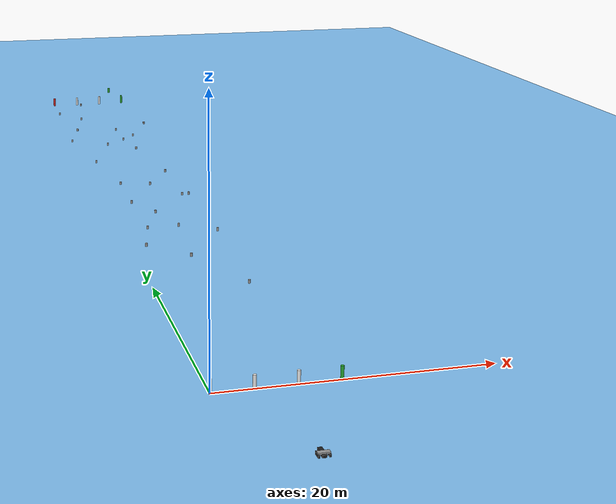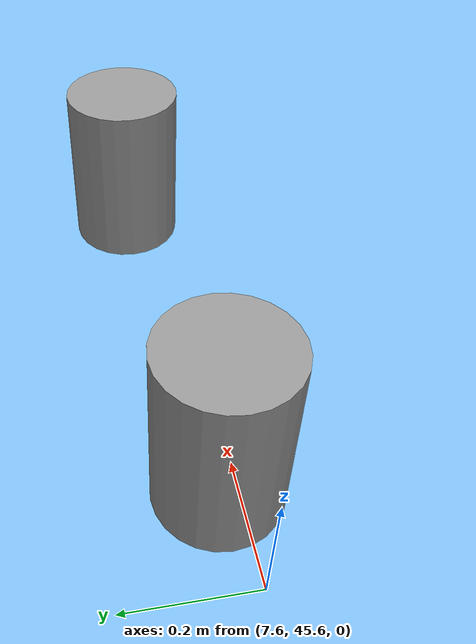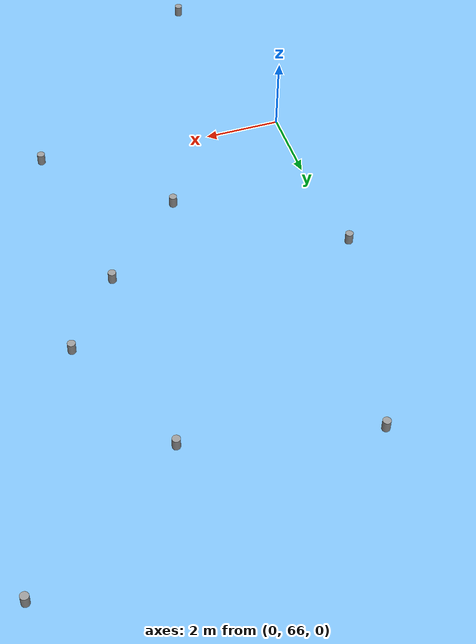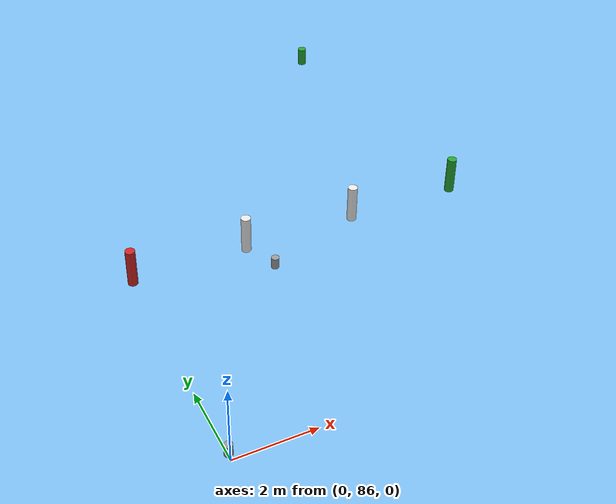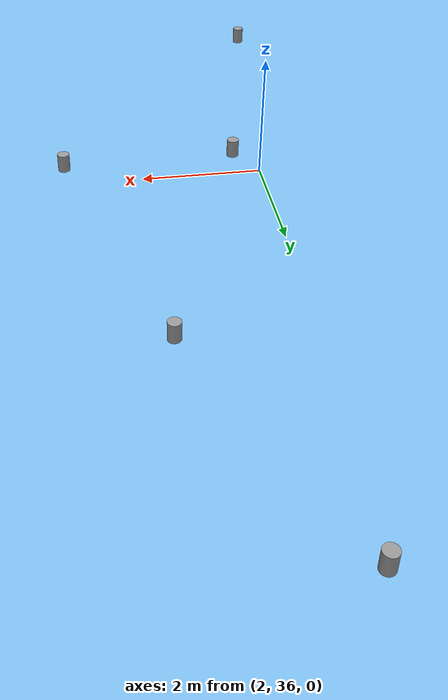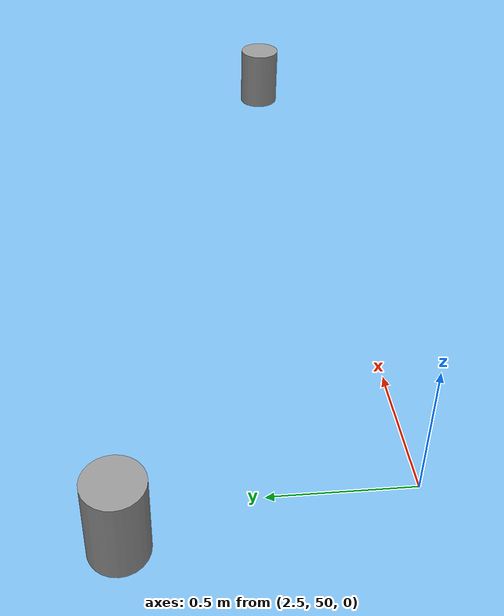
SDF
<sdf version="1.4">
 <world name="world2-case0">
  <light name="sun" type="directional">
   <pose>0 0 10 0 -0 0</pose>
   <diffuse>0.8 0.8 0.8 1</diffuse>
   <specular>0.2 0.2 0.2 1</specular>
   <attenuation>
    <range>1000</range>
    <constant>0.9</constant>
    <linear>0.01</linear>
    <quadratic>0.001</quadratic>
   </attenuation>
   <direction>-0.5 0.1 -0.9</direction>
  </light>
  <model name="ground_plane">
   <static>1</static>
   <pose>4.5 46 0 0 -0 0</pose>
   <link name="link">
    <collision name="collision">
     <geometry><plane><normal>0 0 1</normal><size>20 150</size></plane></geometry>
     <surface><friction><ode><mu>100</mu><mu2>50</mu2></ode></friction></surface>
    </collision>
    <visual name="visual">
     <cast_shadows>0</cast_shadows>
     <geometry><plane><normal>0 0 1</normal><size>20 150</size></plane></geometry>
     <material>
      <script><uri>file://media/materials/scripts/gazebo.material</uri><name>Gazebo/SkyBlue</name></script>
     </material>
    </visual>
    <velocity_decay><linear>0</linear><angular>0</angular></velocity_decay>
   </link>
  </model>
  <physics type="ode">
   <max_step_size>0.001</max_step_size>
   <real_time_factor>1</real_time_factor>
   <real_time_update_rate>1000</real_time_update_rate>
   <gravity>0 0 -9.8</gravity>
  </physics>
  <scene>
   <ambient>0.4 0.4 0.4 1</ambient>
   <background>0.7 0.7 0.7 1</background>
   <shadows>1</shadows>
   <grid>0</grid>
  </scene>
  <spherical_coordinates>
   <surface_model>EARTH_WGS84</surface_model>
   <latitude_deg>0</latitude_deg>
   <longitude_deg>0</longitude_deg>
   <elevation>0</elevation>
   <heading_deg>0</heading_deg>
  </spherical_coordinates>
  <model name="goal_location">
   <static>1</static>
   <pose>8.5 100 0 0 -0 0</pose>
   <link name="link">
    <visual name="visual">
     <geometry><cylinder><radius>0.125</radius><length>1</length></cylinder></geometry>
     <material>
      <script><uri>file://media/materials/scripts/gazebo.material</uri><name>Gazebo/GreenGlow</name></script>
     </material>
    </visual>
    <velocity_decay><linear>0</linear><angular>0</angular></velocity_decay>
   </link>
  </model>
  <model name="boundary_1">
   <static>1</static>
   <pose>0 0 0.5 0 -0 0</pose>
   <link name="link">
    <collision name="collision">
     <geometry><cylinder><radius>0.125</radius><length>1</length></cylinder></geometry>
    </collision>
    <visual name="visual">
     <geometry><cylinder><radius>0.125</radius><length>1</length></cylinder></geometry>
     <material>
      <script><uri>file://media/materials/scripts/gazebo.material</uri><name>Gazebo/Red</name></script>
     </material>
    </visual>
    <velocity_decay><linear>0</linear><angular>0</angular></velocity_decay>
   </link>
  </model>
  <model name="boundary_2">
   <static>1</static>
   <pose>3 0 0.5 0 -0 0</pose>
   <link name="link">
    <collision name="collision">
     <geometry><cylinder><radius>0.125</radius><length>1</length></cylinder></geometry>
    </collision>
    <visual name="visual">
     <geometry><cylinder><radius>0.125</radius><length>1</length></cylinder></geometry>
     <material>
      <script><uri>file://media/materials/scripts/gazebo.material</uri><name>Gazebo/White</name></script>
     </material>
    </visual>
    <velocity_decay><linear>0</linear><angular>0</angular></velocity_decay>
   </link>
  </model>
  <model name="boundary_3">
   <static>1</static>
   <pose>6 0 0.5 0 -0 0</pose>
   <link name="link">
    <collision name="collision">
     <geometry><cylinder><radius>0.125</radius><length>1</length></cylinder></geometry>
    </collision>
    <visual name="visual">
     <geometry><cylinder><radius>0.125</radius><length>1</length></cylinder></geometry>
     <material>
      <script><uri>file://media/materials/scripts/gazebo.material</uri><name>Gazebo/White</name></script>
     </material>
    </visual>
    <velocity_decay><linear>0</linear><angular>0</angular></velocity_decay>
   </link>
  </model>
  <model name="start_boundary">
   <static>1</static>
   <pose>9 0 0.5 0 -0 0</pose>
   <link name="link">
    <collision name="collision">
     <geometry><cylinder><radius>0.125</radius><length>1</length></cylinder></geometry>
    </collision>
    <visual name="visual">
     <geometry><cylinder><radius>0.125</radius><length>1</length></cylinder></geometry>
     <material>
      <script><uri>file://media/materials/scripts/gazebo.material</uri><name>Gazebo/Green</name></script>
     </material>
    </visual>
    <velocity_decay><linear>0</linear><angular>0</angular></velocity_decay>
   </link>
  </model>
  <model name="boundary_5">
   <static>1</static>
   <pose>0 92 0.5 0 -0 0</pose>
   <link name="link">
    <collision name="collision">
     <geometry><cylinder><radius>0.125</radius><length>1</length></cylinder></geometry>
    </collision>
    <visual name="visual">
     <geometry><cylinder><radius>0.125</radius><length>1</length></cylinder></geometry>
     <material>
      <script><uri>file://media/materials/scripts/gazebo.material</uri><name>Gazebo/Red</name></script>
     </material>
    </visual>
    <velocity_decay><linear>0</linear><angular>0</angular></velocity_decay>
   </link>
  </model>
  <model name="boundary_6">
   <static>1</static>
   <pose>3 92 0.5 0 -0 0</pose>
   <link name="link">
    <collision name="collision">
     <geometry><cylinder><radius>0.125</radius><length>1</length></cylinder></geometry>
    </collision>
    <visual name="visual">
     <geometry><cylinder><radius>0.125</radius><length>1</length></cylinder></geometry>
     <material>
      <script><uri>file://media/materials/scripts/gazebo.material</uri><name>Gazebo/White</name></script>
     </material>
    </visual>
    <velocity_decay><linear>0</linear><angular>0</angular></velocity_decay>
   </link>
  </model>
  <model name="boundary_7">
   <static>1</static>
   <pose>6 92 0.5 0 -0 0</pose>
   <link name="link">
    <collision name="collision">
     <geometry><cylinder><radius>0.125</radius><length>1</length></cylinder></geometry>
    </collision>
    <visual name="visual">
     <geometry><cylinder><radius>0.125</radius><length>1</length></cylinder></geometry>
     <material>
      <script><uri>file://media/materials/scripts/gazebo.material</uri><name>Gazebo/White</name></script>
     </material>
    </visual>
    <velocity_decay><linear>0</linear><angular>0</angular></velocity_decay>
   </link>
  </model>
  <model name="goal_boundary">
   <static>1</static>
   <pose>9 92 0.5 0 -0 0</pose>
   <link name="link">
    <collision name="collision">
     <geometry><cylinder><radius>0.125</radius><length>1</length></cylinder></geometry>
    </collision>
    <visual name="visual">
     <geometry><cylinder><radius>0.125</radius><length>1</length></cylinder></geometry>
     <material>
      <script><uri>file://media/materials/scripts/gazebo.material</uri><name>Gazebo/Green</name></script>
     </material>
    </visual>
    <velocity_decay><linear>0</linear><angular>0</angular></velocity_decay>
   </link>
  </model>
  <model name="ob01">
   <static>1</static>
   <pose>2.36 35.38 0.15 0 -0 0</pose>
   <link name="link">
    <collision name="collision">
     <geometry><cylinder><radius>0.1</radius><length>0.3</length></cylinder></geometry>
    </collision>
    <visual name="visual">
     <geometry><cylinder><radius>0.1</radius><length>0.3</length></cylinder></geometry>
     <material>
      <script><uri>file://media/materials/scripts/gazebo.material</uri><name>Gazebo/Grey</name></script>
     </material>
    </visual>
    <velocity_decay><linear>0</linear><angular>0</angular></velocity_decay>
   </link>
  </model>
  <model name="ob02">
   <static>1</static>
   <pose>9.669 78.2986 0.15 0 -0 0</pose>
   <link name="link">
    <collision name="collision">
     <geometry><cylinder><radius>0.1</radius><length>0.3</length></cylinder></geometry>
    </collision>
    <visual name="visual">
     <geometry><cylinder><radius>0.1</radius><length>0.3</length></cylinder></geometry>
     <material>
      <script><uri>file://media/materials/scripts/gazebo.material</uri><name>Gazebo/Grey</name></script>
     </material>
    </visual>
    <velocity_decay><linear>0</linear><angular>0</angular></velocity_decay>
   </link>
  </model>
  <model name="ob03">
   <static>1</static>
   <pose>7.26472 72.23 0.15 0 -0 0</pose>
   <link name="link">
    <collision name="collision">
     <geometry><cylinder><radius>0.1</radius><length>0.3</length></cylinder></geometry>
    </collision>
    <visual name="visual">
     <geometry><cylinder><radius>0.1</radius><length>0.3</length></cylinder></geometry>
     <material>
      <script><uri>file://media/materials/scripts/gazebo.material</uri><name>Gazebo/Grey</name></script>
     </material>
    </visual>
    <velocity_decay><linear>0</linear><angular>0</angular></velocity_decay>
   </link>
  </model>
  <model name="ob04">
   <static>1</static>
   <pose>7.76 45.63 0.15 0 -0 0</pose>
   <link name="link">
    <collision name="collision">
     <geometry><cylinder><radius>0.1</radius><length>0.3</length></cylinder></geometry>
    </collision>
    <visual name="visual">
     <geometry><cylinder><radius>0.1</radius><length>0.3</length></cylinder></geometry>
     <material>
      <script><uri>file://media/materials/scripts/gazebo.material</uri><name>Gazebo/Grey</name></script>
     </material>
    </visual>
    <velocity_decay><linear>0</linear><angular>0</angular></velocity_decay>
   </link>
  </model>
  <model name="ob05">
   <static>1</static>
   <pose>5.30721 50.18 0.15 0 -0 0</pose>
   <link name="link">
    <collision name="collision">
     <geometry><cylinder><radius>0.1</radius><length>0.3</length></cylinder></geometry>
    </collision>
    <visual name="visual">
     <geometry><cylinder><radius>0.1</radius><length>0.3</length></cylinder></geometry>
     <material>
      <script><uri>file://media/materials/scripts/gazebo.material</uri><name>Gazebo/Grey</name></script>
     </material>
    </visual>
    <velocity_decay><linear>0</linear><angular>0</angular></velocity_decay>
   </link>
  </model>
  <model name="ob06">
   <static>1</static>
   <pose>2.3524 50.96 0.15 0 -0 0</pose>
   <link name="link">
    <collision name="collision">
     <geometry><cylinder><radius>0.1</radius><length>0.3</length></cylinder></geometry>
    </collision>
    <visual name="visual">
     <geometry><cylinder><radius>0.1</radius><length>0.3</length></cylinder></geometry>
     <material>
      <script><uri>file://media/materials/scripts/gazebo.material</uri><name>Gazebo/Grey</name></script>
     </material>
    </visual>
    <velocity_decay><linear>0</linear><angular>0</angular></velocity_decay>
   </link>
  </model>
  <model name="ob07">
   <static>1</static>
   <pose>8.40992 45.676 0.15 0 -0 0</pose>
   <link name="link">
    <collision name="collision">
     <geometry><cylinder><radius>0.1</radius><length>0.3</length></cylinder></geometry>
    </collision>
    <visual name="visual">
     <geometry><cylinder><radius>0.1</radius><length>0.3</length></cylinder></geometry>
     <material>
      <script><uri>file://media/materials/scripts/gazebo.material</uri><name>Gazebo/Grey</name></script>
     </material>
    </visual>
    <velocity_decay><linear>0</linear><angular>0</angular></velocity_decay>
   </link>
  </model>
  <model name="ob08">
   <static>1</static>
   <pose>5.7 75.55 0.15 0 -0 0</pose>
   <link name="link">
    <collision name="collision">
     <geometry><cylinder><radius>0.1</radius><length>0.3</length></cylinder></geometry>
    </collision>
    <visual name="visual">
     <geometry><cylinder><radius>0.1</radius><length>0.3</length></cylinder></geometry>
     <material>
      <script><uri>file://media/materials/scripts/gazebo.material</uri><name>Gazebo/Grey</name></script>
     </material>
    </visual>
    <velocity_decay><linear>0</linear><angular>0</angular></velocity_decay>
   </link>
  </model>
  <model name="ob09">
   <static>1</static>
   <pose>0.028 86.17 0.15 0 -0 0</pose>
   <link name="link">
    <collision name="collision">
     <geometry><cylinder><radius>0.1</radius><length>0.3</length></cylinder></geometry>
    </collision>
    <visual name="visual">
     <geometry><cylinder><radius>0.1</radius><length>0.3</length></cylinder></geometry>
     <material>
      <script><uri>file://media/materials/scripts/gazebo.material</uri><name>Gazebo/Grey</name></script>
     </material>
    </visual>
    <velocity_decay><linear>0</linear><angular>0</angular></velocity_decay>
   </link>
  </model>
  <model name="ob10">
   <static>1</static>
   <pose>1.17 60.4532 0.15 0 -0 0</pose>
   <link name="link">
    <collision name="collision">
     <geometry><cylinder><radius>0.1</radius><length>0.3</length></cylinder></geometry>
    </collision>
    <visual name="visual">
     <geometry><cylinder><radius>0.1</radius><length>0.3</length></cylinder></geometry>
     <material>
      <script><uri>file://media/materials/scripts/gazebo.material</uri><name>Gazebo/Grey</name></script>
     </material>
    </visual>
    <velocity_decay><linear>0</linear><angular>0</angular></velocity_decay>
   </link>
  </model>
  <model name="ob11">
   <static>1</static>
   <pose>3.99 40.14 0.15 0 -0 0</pose>
   <link name="link">
    <collision name="collision">
     <geometry><cylinder><radius>0.1</radius><length>0.3</length></cylinder></geometry>
    </collision>
    <visual name="visual">
     <geometry><cylinder><radius>0.1</radius><length>0.3</length></cylinder></geometry>
     <material>
      <script><uri>file://media/materials/scripts/gazebo.material</uri><name>Gazebo/Grey</name></script>
     </material>
    </visual>
    <velocity_decay><linear>0</linear><angular>0</angular></velocity_decay>
   </link>
  </model>
  <model name="ob12">
   <static>1</static>
   <pose>3.37 91.08 0.15 0 -0 0</pose>
   <link name="link">
    <collision name="collision">
     <geometry><cylinder><radius>0.1</radius><length>0.3</length></cylinder></geometry>
    </collision>
    <visual name="visual">
     <geometry><cylinder><radius>0.1</radius><length>0.3</length></cylinder></geometry>
     <material>
      <script><uri>file://media/materials/scripts/gazebo.material</uri><name>Gazebo/Grey</name></script>
     </material>
    </visual>
    <velocity_decay><linear>0</linear><angular>0</angular></velocity_decay>
   </link>
  </model>
  <model name="ob13">
   <static>1</static>
   <pose>5.8 70.35 0.15 0 -0 0</pose>
   <link name="link">
    <collision name="collision">
     <geometry><cylinder><radius>0.1</radius><length>0.3</length></cylinder></geometry>
    </collision>
    <visual name="visual">
     <geometry><cylinder><radius>0.1</radius><length>0.3</length></cylinder></geometry>
     <material>
      <script><uri>file://media/materials/scripts/gazebo.material</uri><name>Gazebo/Grey</name></script>
     </material>
    </visual>
    <velocity_decay><linear>0</linear><angular>0</angular></velocity_decay>
   </link>
  </model>
  <model name="ob14">
   <static>1</static>
   <pose>2.31399 43.9417 0.15 0 -0 0</pose>
   <link name="link">
    <collision name="collision">
     <geometry><cylinder><radius>0.1</radius><length>0.3</length></cylinder></geometry>
    </collision>
    <visual name="visual">
     <geometry><cylinder><radius>0.1</radius><length>0.3</length></cylinder></geometry>
     <material>
      <script><uri>file://media/materials/scripts/gazebo.material</uri><name>Gazebo/Grey</name></script>
     </material>
    </visual>
    <velocity_decay><linear>0</linear><angular>0</angular></velocity_decay>
   </link>
  </model>
  <model name="ob15">
   <static>1</static>
   <pose>4.62 26.88 0.15 0 -0 0</pose>
   <link name="link">
    <collision name="collision">
     <geometry><cylinder><radius>0.1</radius><length>0.3</length></cylinder></geometry>
    </collision>
    <visual name="visual">
     <geometry><cylinder><radius>0.1</radius><length>0.3</length></cylinder></geometry>
     <material>
      <script><uri>file://media/materials/scripts/gazebo.material</uri><name>Gazebo/Grey</name></script>
     </material>
    </visual>
    <velocity_decay><linear>0</linear><angular>0</angular></velocity_decay>
   </link>
  </model>
  <model name="ob16">
   <static>1</static>
   <pose>2.37 82.6 0.15 0 -0 0</pose>
   <link name="link">
    <collision name="collision">
     <geometry><cylinder><radius>0.1</radius><length>0.3</length></cylinder></geometry>
    </collision>
    <visual name="visual">
     <geometry><cylinder><radius>0.1</radius><length>0.3</length></cylinder></geometry>
     <material>
      <script><uri>file://media/materials/scripts/gazebo.material</uri><name>Gazebo/Grey</name></script>
     </material>
    </visual>
    <velocity_decay><linear>0</linear><angular>0</angular></velocity_decay>
   </link>
  </model>
  <model name="ob17">
   <static>1</static>
   <pose>8.49548 33.36 0.15 0 -0 0</pose>
   <link name="link">
    <collision name="collision">
     <geometry><cylinder><radius>0.1</radius><length>0.3</length></cylinder></geometry>
    </collision>
    <visual name="visual">
     <geometry><cylinder><radius>0.1</radius><length>0.3</length></cylinder></geometry>
     <material>
      <script><uri>file://media/materials/scripts/gazebo.material</uri><name>Gazebo/Grey</name></script>
     </material>
    </visual>
    <velocity_decay><linear>0</linear><angular>0</angular></velocity_decay>
   </link>
  </model>
  <model name="ob18">
   <static>1</static>
   <pose>5.29 35.5 0.15 0 -0 0</pose>
   <link name="link">
    <collision name="collision">
     <geometry><cylinder><radius>0.1</radius><length>0.3</length></cylinder></geometry>
    </collision>
    <visual name="visual">
     <geometry><cylinder><radius>0.1</radius><length>0.3</length></cylinder></geometry>
     <material>
      <script><uri>file://media/materials/scripts/gazebo.material</uri><name>Gazebo/Grey</name></script>
     </material>
    </visual>
    <velocity_decay><linear>0</linear><angular>0</angular></velocity_decay>
   </link>
  </model>
  <model name="ob19">
   <static>1</static>
   <pose>1.35 30.41 0.15 0 -0 0</pose>
   <link name="link">
    <collision name="collision">
     <geometry><cylinder><radius>0.1</radius><length>0.3</length></cylinder></geometry>
    </collision>
    <visual name="visual">
     <geometry><cylinder><radius>0.1</radius><length>0.3</length></cylinder></geometry>
     <material>
      <script><uri>file://media/materials/scripts/gazebo.material</uri><name>Gazebo/Grey</name></script>
     </material>
    </visual>
    <velocity_decay><linear>0</linear><angular>0</angular></velocity_decay>
   </link>
  </model>
  <model name="ob20">
   <static>1</static>
   <pose>7.80967 54.871 0.15 0 -0 0</pose>
   <link name="link">
    <collision name="collision">
     <geometry><cylinder><radius>0.1</radius><length>0.3</length></cylinder></geometry>
    </collision>
    <visual name="visual">
     <geometry><cylinder><radius>0.1</radius><length>0.3</length></cylinder></geometry>
     <material>
      <script><uri>file://media/materials/scripts/gazebo.material</uri><name>Gazebo/Grey</name></script>
     </material>
    </visual>
    <velocity_decay><linear>0</linear><angular>0</angular></velocity_decay>
   </link>
  </model>
  <model name="ob21">
   <static>1</static>
   <pose>7.75 19.29 0.15 0 -0 0</pose>
   <link name="link">
    <collision name="collision">
     <geometry><cylinder><radius>0.1</radius><length>0.3</length></cylinder></geometry>
    </collision>
    <visual name="visual">
     <geometry><cylinder><radius>0.1</radius><length>0.3</length></cylinder></geometry>
     <material>
      <script><uri>file://media/materials/scripts/gazebo.material</uri><name>Gazebo/Grey</name></script>
     </material>
    </visual>
    <velocity_decay><linear>0</linear><angular>0</angular></velocity_decay>
   </link>
  </model>
  <model name="ob22">
   <static>1</static>
   <pose>1.11 76.48 0.15 0 -0 0</pose>
   <link name="link">
    <collision name="collision">
     <geometry><cylinder><radius>0.1</radius><length>0.3</length></cylinder></geometry>
    </collision>
    <visual name="visual">
     <geometry><cylinder><radius>0.1</radius><length>0.3</length></cylinder></geometry>
     <material>
      <script><uri>file://media/materials/scripts/gazebo.material</uri><name>Gazebo/Grey</name></script>
     </material>
    </visual>
    <velocity_decay><linear>0</linear><angular>0</angular></velocity_decay>
   </link>
  </model>
  <model name="ob23">
   <static>1</static>
   <pose>-0.224319 70.84 0.15 0 -0 0</pose>
   <link name="link">
    <collision name="collision">
     <geometry><cylinder><radius>0.1</radius><length>0.3</length></cylinder></geometry>
    </collision>
    <visual name="visual">
     <geometry><cylinder><radius>0.1</radius><length>0.3</length></cylinder></geometry>
     <material>
      <script><uri>file://media/materials/scripts/gazebo.material</uri><name>Gazebo/Grey</name></script>
     </material>
    </visual>
    <velocity_decay><linear>0</linear><angular>0</angular></velocity_decay>
   </link>
  </model>
  <model name="ob24">
   <static>1</static>
   <pose>6.52592 65.6469 0.15 0 -0 0</pose>
   <link name="link">
    <collision name="collision">
     <geometry><cylinder><radius>0.1</radius><length>0.3</length></cylinder></geometry>
    </collision>
    <visual name="visual">
     <geometry><cylinder><radius>0.1</radius><length>0.3</length></cylinder></geometry>
     <material>
      <script><uri>file://media/materials/scripts/gazebo.material</uri><name>Gazebo/Grey</name></script>
     </material>
    </visual>
    <velocity_decay><linear>0</linear><angular>0</angular></velocity_decay>
   </link>
  </model>
  <model name="ob25">
   <static>1</static>
   <pose>3.62879 68.2456 0.15 0 -0 0</pose>
   <link name="link">
    <collision name="collision">
     <geometry><cylinder><radius>0.1</radius><length>0.3</length></cylinder></geometry>
    </collision>
    <visual name="visual">
     <geometry><cylinder><radius>0.1</radius><length>0.3</length></cylinder></geometry>
     <material>
      <script><uri>file://media/materials/scripts/gazebo.material</uri><name>Gazebo/Grey</name></script>
     </material>
    </visual>
    <velocity_decay><linear>0</linear><angular>0</angular></velocity_decay>
   </link>
  </model>
  <model name="RoboBoat">
   <static>0</static>
   <link name="link">
    <inertial>
     <inertia><ixx>1</ixx><ixy>0</ixy><ixz>0</ixz><iyy>1</iyy><iyz>0</iyz><izz>1</izz></inertia>
     <mass>1</mass>
    </inertial>
    <collision name="hull_col">
     <pose>0 0.5 0.1 0 -0 0</pose>
     <geometry><box><size>0.3 1 0.2</size></box></geometry>
    </collision>
    <visual name="hull_vis">
     <pose>0 0.5 0.1 0 -0 0</pose>
     <geometry><box><size>0.3 1 0.2</size></box></geometry>
     <material>
      <script><uri>file://media/materials/scripts/gazebo.material</uri><name>Gazebo/Black</name></script>
     </material>
    </visual>
    <collision name="top_col">
     <pose>0 0.25 0.25 0 -0 0</pose>
     <geometry><box><size>0.8 0.3 0.1</size></box></geometry>
    </collision>
    <visual name="top_vis">
     <pose>0 0.25 0.25 0 -0 0</pose>
     <geometry><box><size>0.8 0.3 0.1</size></box></geometry>
     <material>
      <script><uri>file://media/materials/scripts/gazebo.material</uri><name>Gazebo/Grey</name></script>
     </material>
    </visual>
    <collision name="left_col">
     <pose>-0.35 0.3 0.1 0 -0 0</pose>
     <geometry><box><size>0.1 0.6 0.2</size></box></geometry>
    </collision>
    <visual name="left_vis">
     <pose>-0.35 0.3 0.1 0 -0 0</pose>
     <geometry><box><size>0.1 0.6 0.2</size></box></geometry>
     <material>
      <script><uri>file://media/materials/scripts/gazebo.material</uri><name>Gazebo/Black</name></script>
     </material>
    </visual>
    <collision name="right_col">
     <pose>0.35 0.3 0.1 0 -0 0</pose>
     <geometry><box><size>0.1 0.6 0.2</size></box></geometry>
    </collision>
    <visual name="right_vis">
     <pose>0.35 0.3 0.1 0 -0 0</pose>
     <geometry><box><size>0.1 0.6 0.2</size></box></geometry>
     <material>
      <script><uri>file://media/materials/scripts/gazebo.material</uri><name>Gazebo/Black</name></script>
     </material>
    </visual>
    <sensor name="LIDAR" type="ray">
     <pose>0 0.8 0.25 0 -0 1.5708</pose>
     <always_on>1</always_on>
     <visualize>1</visualize>
     <topic>laser_data</topic>
     <update_rate>10</update_rate>
     <ray>
      <scan>
       <horizontal>
        <samples>162</samples>
        <resolution>1</resolution>
        <min_angle>-2.26893</min_angle>
        <max_angle>2.26893</max_angle>
       </horizontal>
      </scan>
      <range><min>0.5</min><max>20</max><resolution>0.01</resolution></range>
      <noise><type>gaussian</type><mean>0</mean><stddev>0.05</stddev></noise>
     </ray>
    </sensor>
    <sensor name="IMU" type="imu">
     <pose>0 0.25 0.25 0 -0 0</pose>
     <always_on>1</always_on>
     <visualize>1</visualize>
     <topic>__default_topic__</topic>
     <update_rate>50</update_rate>
     <imu>
      <noise>
       <type>gaussian</type>
       <rate>
        <mean>0</mean>
        <stddev>0.0002</stddev>
        <bias_mean>7.5e-06</bias_mean>
        <bias_stddev>8e-07</bias_stddev>
       </rate>
       <accel><mean>0</mean><stddev>0.017</stddev><bias_mean>0.1</bias_mean><bias_stddev>0.001</bias_stddev></accel>
      </noise>
     </imu>
    </sensor>
    <sensor name="GPS" type="gps">
     <pose>0 0.5 0.1 0 -0 0</pose>
     <always_on>1</always_on>
     <visualize>0</visualize>
     <topic>gps_data</topic>
     <update_rate>10</update_rate>
     <gps>
      <position_sensing>
       <horizontal><noise type="gaussian"><mean>0</mean><stddev>1.5</stddev></noise></horizontal>
       <vertical><noise type="gaussian"><mean>0</mean><stddev>3</stddev></noise></vertical>
      </position_sensing>
      <velocity_sensing>
       <horizontal><noise type="gaussian"><mean>0</mean><stddev>0.005</stddev></noise></horizontal>
       <vertical><noise type="gaussian"><mean>0</mean><stddev>0.01</stddev></noise></vertical>
      </velocity_sensing>
     </gps>
    </sensor>
    <velocity_decay><linear>0</linear><angular>0</angular></velocity_decay>
   </link>
   <plugin name="motor_schema_arch" filename="libmotor_schema_arch.so">
    <gain_avoid>0.1</gain_avoid>
    <gain_boundary>0.5</gain_boundary>
    <gain_noise>0.05</gain_noise>
    <gain_open>0.1</gain_open>
    <gain_goal>1.0</gain_goal>
    <max_speed>3.6</max_speed>
    <lidar>LIDAR</lidar>
    <imu>IMU</imu>
    <gps>GPS</gps>
    <output>SimulationOutput.txt</output>
   </plugin>
   <pose>4.5 -10 0 0 -0 0</pose>
  </model>
 </world>
</sdf>
